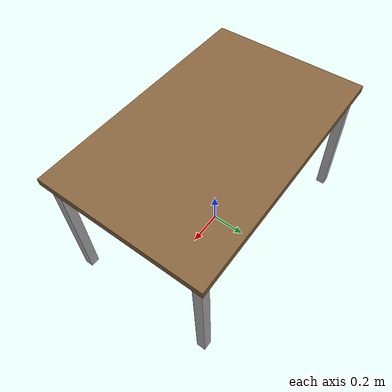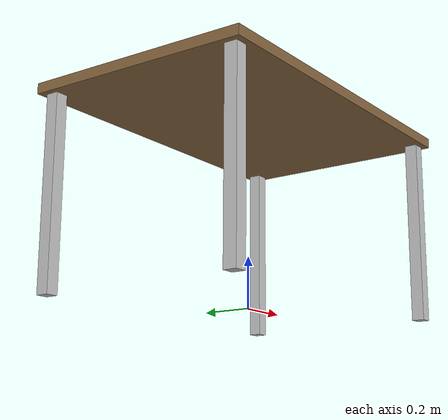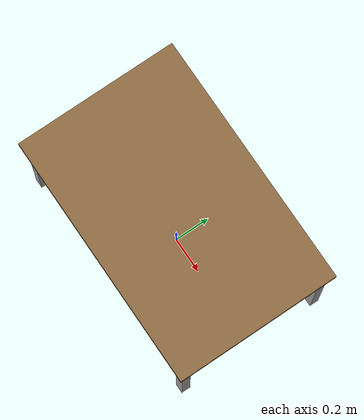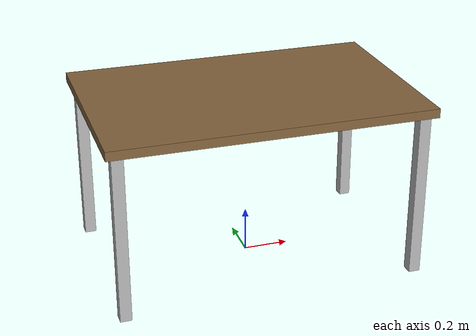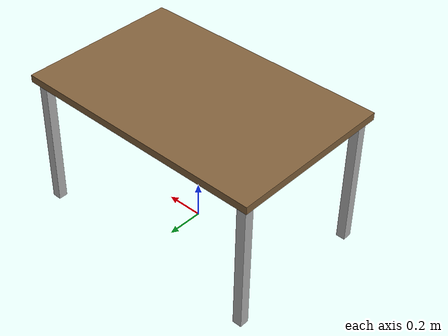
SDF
<?xml version="1.0"?>
<sdf version="1.6">
  <model name="table">
    <static>true</static>
    <link name="table_link">
      <collision name="top_collision">
        <pose>0 0 0.76 0 0 0</pose>
        <geometry>
          <box>
            <size>1.4 0.9 0.04</size>
          </box>
        </geometry>
      </collision>
      <collision name="leg_fl_collision">
        <pose>0.65 0.4 0.38 0 0 0</pose>
        <geometry>
          <box>
            <size>0.05 0.05 0.76</size>
          </box>
        </geometry>
      </collision>
      <collision name="leg_fr_collision">
        <pose>0.65 -0.4 0.38 0 0 0</pose>
        <geometry>
          <box>
            <size>0.05 0.05 0.76</size>
          </box>
        </geometry>
      </collision>
      <collision name="leg_rl_collision">
        <pose>-0.65 0.4 0.38 0 0 0</pose>
        <geometry>
          <box>
            <size>0.05 0.05 0.76</size>
          </box>
        </geometry>
      </collision>
      <collision name="leg_rr_collision">
        <pose>-0.65 -0.4 0.38 0 0 0</pose>
        <geometry>
          <box>
            <size>0.05 0.05 0.76</size>
          </box>
        </geometry>
      </collision>

      <visual name="top_visual">
        <pose>0 0 0.76 0 0 0</pose>
        <geometry>
          <box>
            <size>1.4 0.9 0.04</size>
          </box>
        </geometry>
        <material>
          <ambient>0.45 0.34 0.22 1.0</ambient>
          <diffuse>0.52 0.39 0.24 1.0</diffuse>
        </material>
      </visual>
      <visual name="leg_fl_visual">
        <pose>0.65 0.4 0.38 0 0 0</pose>
        <geometry>
          <box>
            <size>0.05 0.05 0.76</size>
          </box>
        </geometry>
      </visual>
      <visual name="leg_fr_visual">
        <pose>0.65 -0.4 0.38 0 0 0</pose>
        <geometry>
          <box>
            <size>0.05 0.05 0.76</size>
          </box>
        </geometry>
      </visual>
      <visual name="leg_rl_visual">
        <pose>-0.65 0.4 0.38 0 0 0</pose>
        <geometry>
          <box>
            <size>0.05 0.05 0.76</size>
          </box>
        </geometry>
      </visual>
      <visual name="leg_rr_visual">
        <pose>-0.65 -0.4 0.38 0 0 0</pose>
        <geometry>
          <box>
            <size>0.05 0.05 0.76</size>
          </box>
        </geometry>
      </visual>
    </link>
  </model>
</sdf>
